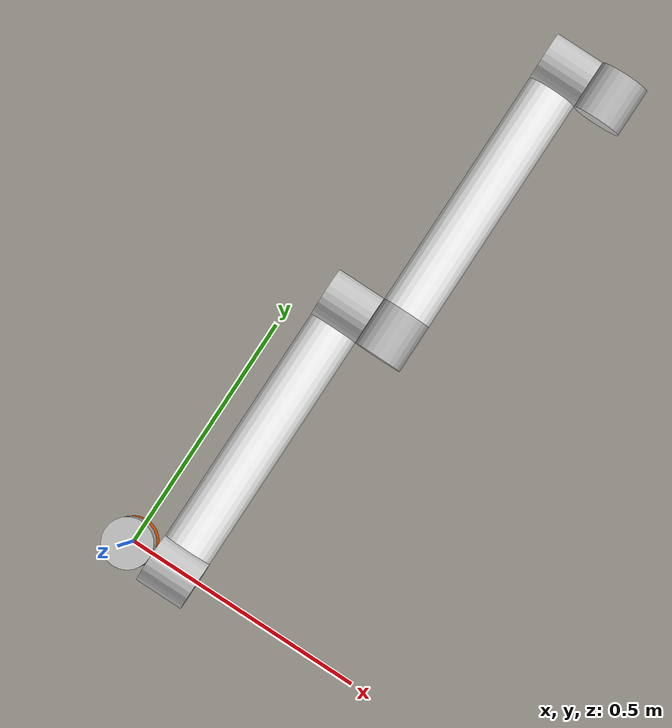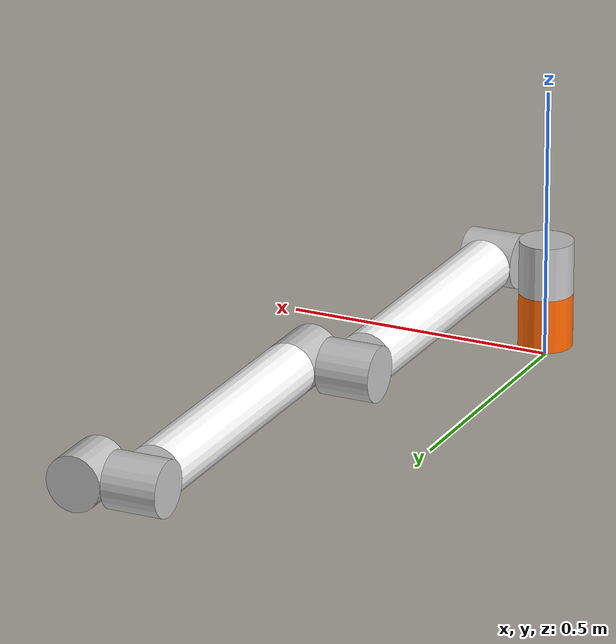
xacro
<robot name="arm_robot" xmlns:xacro="http://www.ros.org/wiki/xacro">

  <xacro:include filename="$(find arm_description)/urdf/arm_description.urdf.xacro"/>

  <arm/>

  <link name="world"/>

  <joint name="world_joint" type="fixed">
    <parent link="world"/>
    <child link = "base_link"/>
    <origin xyz="0.0 0.0 0.02" rpy="0.0 0.0 0.0"/>
  </joint>

</robot>

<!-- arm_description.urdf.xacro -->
<robot name="arm" xmlns:xacro="http://www.ros.org/wiki/xacro">

  <xacro:include filename="$(find arm_common)/urdf/arm_common.urdf.xacro"/>

  <xacro:macro name="arm">

    <plugin_ros_control/>

    <link name="base_link"/>
    <base
            name="base"
            parent="base_link"
            xyz="${standoff_x} ${standoff_y} ${standoff_z + base_height/2 + gap}"
            rpy="0 0 0"
    />
    <motor
            name="motor_S"
            parent="base"
            xyz="0 0 ${base_height/2 + motor_height/2 + gap}"
            rpy="0 0 0"
    />
    <motor
            name="motor_L"
            parent="motor_S"
            xyz="${motor_radius + motor_height/2 + gap} 0 0"
            rpy="0 ${pi/2} 0"
    />
    <pole
            name="pole_1"
            parent="motor_L"
            length="${pole_length}"
            xyz="0 ${motor_radius + pole_length/2 + gap} 0"
            rpy="${pi/2} 0 0"
    />
    <motor
            name="motor_U"
            parent="pole_1"
            xyz="0 0 -${pole_length/2 + motor_radius + gap}"
            rpy="-${pi/2} 0 0"
    />
    <motor
            name="motor_R"
            parent="motor_U"
            xyz="0 0 ${motor_height/2 + motor_radius + gap}"
            rpy="-${pi/2} 0 0"
    />
    <pole
            name="pole_2"
            parent="motor_R"
            length="${pole_length}"
            xyz="0 0 ${motor_height/2 + pole_length/2 + gap}"
            rpy="0 0 0"
    />
    <motor
            name="motor_B"
            parent="pole_2"
            xyz="0 0 ${pole_length/2 + motor_radius + gap}"
            rpy="${pi/2} 0 0"
    />
    <motor
            name="motor_T"
            parent="motor_B"
            xyz="0 0 ${motor_height/2 + motor_radius + gap}"
            rpy="-${pi/2} 0 0"
    />

    <link name="wrist_link"/>
    <fixed
            name="wrist_joint"
            parent="motor_T"
            child="wrist_link"
            xyz="0 0 ${motor_height/2 + gap}"
            rpy="0 0 0"
    />

  </xacro:macro>

</robot>

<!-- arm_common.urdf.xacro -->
<robot name="arm_common" xmlns:xacro="http://www.ros.org/wiki/xacro">

  <!-- property -->
  <xacro:property name="pi" value="3.14159265"/>
  <xacro:property name="gap" value="0.0"/>

  <xacro:property name="base_radius" value="0.05"/>
  <xacro:property name="base_height" value="0.1"/>
  <xacro:property name="base_mass" value="10"/>

  <xacro:property name="motor_radius" value="0.05"/>
  <xacro:property name="motor_height" value="0.1"/>
  <xacro:property name="motor_mass" value="10"/>
  <xacro:property name="motor_effort" value="150.0"/>
  <xacro:property name="motor_vel" value="${pi}"/>

  <xacro:property name="pole_radius" value="0.05"/>
  <xacro:property name="pole_length" value="0.5"/>
  <xacro:property name="pole_mass" value="50"/>

  <xacro:property name="standoff_x" value="0"/>
  <xacro:property name="standoff_y" value="0"/>
  <xacro:property name="standoff_z" value="0"/>

  <!-- plugin -->
  <xacro:macro name="plugin_ros_control">
    <gazebo>
      <plugin filename="libgazebo_ros_control.so" name="ros_control">
        <robotNamespace>/</robotNamespace>
        <legacyModeNS>true</legacyModeNS>
      </plugin>
    </gazebo>
  </xacro:macro>

  <!-- inertial -->
  <xacro:macro name="cylinder_inertial" params="radius length mass">
    <inertial>
      <origin xyz="0 0 0" rpy="0 0 0"/>
      <mass value="${mass}" />
      <inertia ixx="${0.0833333 * mass * (3 * radius * radius + length * length)}" ixy="0.0" ixz="0.0"
               iyy="${0.0833333 * mass * (3 * radius * radius + length * length)}" iyz="0.0"
               izz="${0.5 * mass * radius * radius}" />
    </inertial>
  </xacro:macro>

  <!-- joint -->
  <xacro:macro name="continuous" params="name parent child xyz rpy axis">
    <joint name="${name}" type="continuous">
      <parent link="${parent}"/>
      <child link="${child}"/>
      <origin xyz="${xyz}" rpy="${rpy}"/>
      <axis xyz="${axis}"/>
      <limit effort="${motor_effort}" velocity="${motor_vel}"/>
      <dynamics damping="0.0" friction="0.0"/>
    </joint>
    <transmission name="${name}_trans">
      <type>transmission_interface/SimpleTransmission</type>
      <joint name="${name}">
        <hardwareInterface>hardware_interface/PositionJointInterface</hardwareInterface>
      </joint>
      <actuator name="${name}_motor">
        <hardwareInterface>hardware_interface/PositionJointInterface</hardwareInterface>
        <mechanicalReduction>1</mechanicalReduction>
      </actuator>
    </transmission>
  </xacro:macro>
  <xacro:macro name="fixed" params="name parent child xyz rpy">
    <joint name="${name}" type="fixed">
      <parent link="${parent}"/>
      <child link="${child}"/>
      <origin xyz="${xyz}" rpy="${rpy}"/>
    </joint>
  </xacro:macro>

  <!-- link -->
  <xacro:macro name="base" params="name parent xyz rpy">
    <link name="${name}">
      <visual>
        <origin xyz="0 0 0" rpy="0 0 0"/>
        <geometry>
          <cylinder length="${base_height}" radius="${base_radius}"/>
        </geometry>
        <material name="yellow">
          <color rgba="1 0.4 0 1"/>
        </material>
      </visual>
      <collision>
        <geometry>
          <cylinder length="${base_height}" radius="${base_radius}"/>
        </geometry>
      </collision>
      <cylinder_inertial
              radius="${base_radius}"
              length="${base_height}"
              mass="${base_mass}"
      />
    </link>
    <fixed
            name="${name}_joint"
            parent="${parent}"
            child="${name}"
            xyz="${xyz}"
            rpy="${rpy}"
    />
    <gazebo reference="${name}">
      <material>Gazebo/Yellow</material>
    </gazebo>
  </xacro:macro>
  <xacro:macro name="motor" params="name parent xyz rpy">
    <link name="${name}">
      <visual>
        <origin xyz="0 0 0" rpy="0 0 0"/>
        <geometry>
          <cylinder length="${motor_height}" radius="${motor_radius}"/>
        </geometry>
        <material name="gray">
          <color rgba="0.75 0.75 0.75 1"/>
        </material>
      </visual>
      <collision>
        <geometry>
          <cylinder length="${motor_height}" radius="${motor_radius}"/>
        </geometry>
      </collision>
      <cylinder_inertial
              radius="${motor_radius}"
              length="${motor_height}"
              mass="${motor_mass}"
      />
    </link>
    <continuous
            name="${name}_joint"
            parent="${parent}"
            child="${name}"
            xyz="${xyz}"
            rpy="${rpy}"
            axis="0 0 1"
    />
    <gazebo reference="${name}">
      <material>Gazebo/Gray</material>
    </gazebo>
  </xacro:macro>
  <xacro:macro name="pole" params="name parent length xyz rpy">
    <link name="${name}">
      <visual>
        <origin xyz="0 0 0" rpy="0 0 0"/>
        <geometry>
          <cylinder length="${length}" radius="${pole_radius}"/>
        </geometry>
        <material name="white">
          <color rgba="1 1 1 1"/>
        </material>
      </visual>
      <collision>
        <geometry>
          <cylinder length="${length}" radius="${pole_radius}"/>
        </geometry>
      </collision>
      <cylinder_inertial
              radius="${pole_radius}"
              length="${pole_length}"
              mass="${pole_mass}"
      />
    </link>
    <fixed
            name="${name}_joint"
            parent="${parent}"
            child="${name}"
            xyz="${xyz}"
            rpy="${rpy}"
    />
    <gazebo reference="${name}">
      <material>Gazebo/White</material>
    </gazebo>
  </xacro:macro>

</robot>
